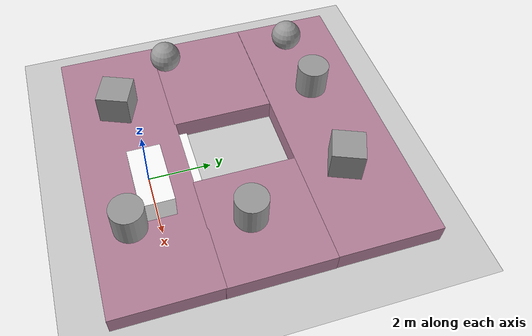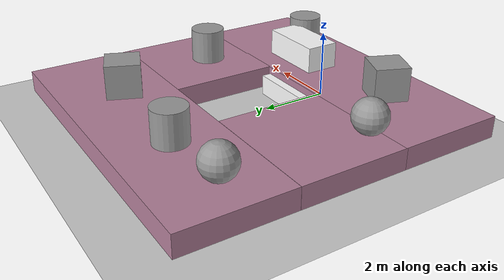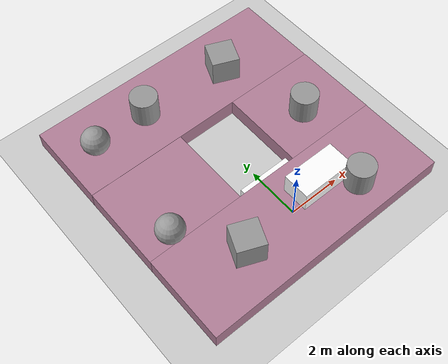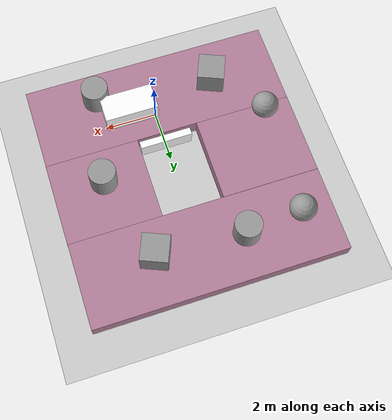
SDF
<sdf version="1.7">
 <world name="default">
  <light name="sun" type="directional">
   <pose>0 0 10 0 -0 0</pose>
   <diffuse>0.8 0.8 0.8 1</diffuse>
   <specular>0.2 0.2 0.2 1</specular>
   <attenuation>
    <range>1000</range>
    <constant>0.9</constant>
    <linear>0.01</linear>
    <quadratic>0.001</quadratic>
   </attenuation>
   <direction>-0.5 0.1 -0.9</direction>
   <spot><inner_angle>0</inner_angle><outer_angle>0</outer_angle><falloff>0</falloff></spot>
  </light>
  <model name="ground_plane">
   <static>1</static>
   <link name="link">
    <collision name="collision">
     <geometry><plane><normal>0 0 1</normal><size>100 100</size></plane></geometry>
     <surface>
      <contact><collide_bitmask>65535</collide_bitmask></contact>
      <friction><ode><mu>100</mu><mu2>50</mu2></ode></friction>
     </surface>
    </collision>
    <visual name="visual">
     <cast_shadows>0</cast_shadows>
     <geometry><plane><normal>0 0 1</normal><size>100 100</size></plane></geometry>
     <material>
      <script><uri>file://media/materials/scripts/gazebo.material</uri><name>Gazebo/Grey</name></script>
     </material>
    </visual>
   </link>
  </model>
  <gravity>0 0 -9.8</gravity>
  <magnetic_field>6e-06 2.3e-05 -4.2e-05</magnetic_field>
  <atmosphere type="adiabatic"/>
  <physics type="ode">
   <max_step_size>0.001</max_step_size>
   <real_time_factor>1</real_time_factor>
   <real_time_update_rate>1000</real_time_update_rate>
  </physics>
  <scene><ambient>0.4 0.4 0.4 1</ambient><background>0.7 0.7 0.7 1</background><shadows>1</shadows></scene>
  <spherical_coordinates>
   <surface_model>EARTH_WGS84</surface_model>
   <latitude_deg>0</latitude_deg>
   <longitude_deg>0</longitude_deg>
   <elevation>0</elevation>
   <heading_deg>0</heading_deg>
  </spherical_coordinates>
  <model name="ground">
   <link name="link">
    <inertial>
     <mass>19.1736</mass>
     <inertia><ixx>16.9447</ixx><ixy>0</ixy><ixz>0</ixz><iyy>145.392</iyy><iyz>0</iyz><izz>161.066</izz></inertia>
    </inertial>
    <visual name="visual">
     <geometry><box><size>9.51826 3.19491 0.630505</size></box></geometry>
     <material>
      <script><name>Gazebo/Grey</name><uri>file://media/materials/scripts/gazebo.material</uri></script>
      <shader type="pixel"><normal_map>__default__</normal_map></shader>
      <ambient>0.7 0.5 0.6 1</ambient>
      <diffuse>0.7 0.7 0.7 1</diffuse>
      <specular>0.01 0.01 0.01 1</specular>
      <emissive>0 0 0 1</emissive>
     </material>
    </visual>
    <collision name="collision">
     <geometry><box><size>9.51826 3.19491 0.630505</size></box></geometry>
     <surface>
      <friction>
       <ode><mu>1</mu><mu2>1</mu2><fdir1>0 0 0</fdir1><slip1>0</slip1><slip2>0</slip2></ode>
       <torsional>
        <coefficient>1</coefficient>
        <patch_radius>0</patch_radius>
        <surface_radius>0</surface_radius>
        <use_patch_radius>1</use_patch_radius>
        <ode><slip>0</slip></ode>
       </torsional>
      </friction>
      <bounce><restitution_coefficient>0</restitution_coefficient><threshold>1e+06</threshold></bounce>
      <contact>
       <collide_without_contact>0</collide_without_contact>
       <collide_without_contact_bitmask>1</collide_without_contact_bitmask>
       <collide_bitmask>1</collide_bitmask>
       <ode>
        <soft_cfm>0</soft_cfm>
        <soft_erp>0.2</soft_erp>
        <kp>1e+13</kp>
        <kd>1</kd>
        <max_vel>0.01</max_vel>
        <min_depth>0</min_depth>
       </ode>
       <bullet>
        <split_impulse>1</split_impulse>
        <split_impulse_penetration_threshold>-0.01</split_impulse_penetration_threshold>
        <soft_cfm>0</soft_cfm>
        <soft_erp>0.2</soft_erp>
        <kp>1e+13</kp>
        <kd>1</kd>
       </bullet>
      </contact>
     </surface>
    </collision>
   </link>
   <static>1</static>
   <pose>-0.16619 -0.374928 0.5 0 -0 0</pose>
  </model>
  <model name="ground_clone">
   <link name="link">
    <inertial>
     <mass>19.1736</mass>
     <inertia><ixx>16.9447</ixx><ixy>0</ixy><ixz>0</ixz><iyy>145.392</iyy><iyz>0</iyz><izz>161.066</izz></inertia>
    </inertial>
    <visual name="visual">
     <geometry><box><size>9.51826 3.19491 0.630505</size></box></geometry>
     <material>
      <script><name>Gazebo/Grey</name><uri>file://media/materials/scripts/gazebo.material</uri></script>
      <shader type="pixel"><normal_map>__default__</normal_map></shader>
      <ambient>0.7 0.5 0.6 1</ambient>
      <diffuse>0.7 0.7 0.7 1</diffuse>
      <specular>0.01 0.01 0.01 1</specular>
      <emissive>0 0 0 1</emissive>
     </material>
    </visual>
    <collision name="collision">
     <geometry><box><size>9.51826 3.19491 0.630505</size></box></geometry>
     <surface>
      <friction>
       <ode><mu>1</mu><mu2>1</mu2><fdir1>0 0 0</fdir1><slip1>0</slip1><slip2>0</slip2></ode>
       <torsional>
        <coefficient>1</coefficient>
        <patch_radius>0</patch_radius>
        <surface_radius>0</surface_radius>
        <use_patch_radius>1</use_patch_radius>
        <ode><slip>0</slip></ode>
       </torsional>
      </friction>
      <bounce><restitution_coefficient>0</restitution_coefficient><threshold>1e+06</threshold></bounce>
      <contact>
       <collide_without_contact>0</collide_without_contact>
       <collide_without_contact_bitmask>1</collide_without_contact_bitmask>
       <collide_bitmask>1</collide_bitmask>
       <ode>
        <soft_cfm>0</soft_cfm>
        <soft_erp>0.2</soft_erp>
        <kp>1e+13</kp>
        <kd>1</kd>
        <max_vel>0.01</max_vel>
        <min_depth>0</min_depth>
       </ode>
       <bullet>
        <split_impulse>1</split_impulse>
        <split_impulse_penetration_threshold>-0.01</split_impulse_penetration_threshold>
        <soft_cfm>0</soft_cfm>
        <soft_erp>0.2</soft_erp>
        <kp>1e+13</kp>
        <kd>1</kd>
       </bullet>
      </contact>
     </surface>
    </collision>
   </link>
   <static>1</static>
   <pose>-0.167152 5.98068 0.5 0 -0 0</pose>
  </model>
  <model name="ground_clone_clone">
   <link name="link">
    <inertial>
     <mass>19.1736</mass>
     <inertia><ixx>16.9447</ixx><ixy>0</ixy><ixz>0</ixz><iyy>145.392</iyy><iyz>0</iyz><izz>161.066</izz></inertia>
    </inertial>
    <visual name="visual">
     <geometry><box><size>3.66439 3.19491 0.630505</size></box></geometry>
     <material>
      <script><name>Gazebo/Grey</name><uri>file://media/materials/scripts/gazebo.material</uri></script>
      <shader type="pixel"><normal_map>__default__</normal_map></shader>
      <ambient>0.7 0.5 0.6 1</ambient>
      <diffuse>0.7 0.7 0.7 1</diffuse>
      <specular>0.01 0.01 0.01 1</specular>
      <emissive>0 0 0 1</emissive>
     </material>
    </visual>
    <collision name="collision">
     <geometry><box><size>3.66439 3.19491 0.630505</size></box></geometry>
     <surface>
      <friction>
       <ode><mu>1</mu><mu2>1</mu2><fdir1>0 0 0</fdir1><slip1>0</slip1><slip2>0</slip2></ode>
       <torsional>
        <coefficient>1</coefficient>
        <patch_radius>0</patch_radius>
        <surface_radius>0</surface_radius>
        <use_patch_radius>1</use_patch_radius>
        <ode><slip>0</slip></ode>
       </torsional>
      </friction>
      <bounce><restitution_coefficient>0</restitution_coefficient><threshold>1e+06</threshold></bounce>
      <contact>
       <collide_without_contact>0</collide_without_contact>
       <collide_without_contact_bitmask>1</collide_without_contact_bitmask>
       <collide_bitmask>1</collide_bitmask>
       <ode>
        <soft_cfm>0</soft_cfm>
        <soft_erp>0.2</soft_erp>
        <kp>1e+13</kp>
        <kd>1</kd>
        <max_vel>0.01</max_vel>
        <min_depth>0</min_depth>
       </ode>
       <bullet>
        <split_impulse>1</split_impulse>
        <split_impulse_penetration_threshold>-0.01</split_impulse_penetration_threshold>
        <soft_cfm>0</soft_cfm>
        <soft_erp>0.2</soft_erp>
        <kp>1e+13</kp>
        <kd>1</kd>
       </bullet>
      </contact>
     </surface>
    </collision>
   </link>
   <static>1</static>
   <pose>-3.09466 2.78124 0.5 0 -0 0</pose>
  </model>
  <model name="ground_clone_clone_clone">
   <link name="link">
    <inertial>
     <mass>19.1736</mass>
     <inertia><ixx>16.9447</ixx><ixy>0</ixy><ixz>0</ixz><iyy>145.392</iyy><iyz>0</iyz><izz>161.066</izz></inertia>
    </inertial>
    <visual name="visual">
     <geometry><box><size>3.53414 3.19491 0.630505</size></box></geometry>
     <material>
      <script><name>Gazebo/Grey</name><uri>file://media/materials/scripts/gazebo.material</uri></script>
      <shader type="pixel"><normal_map>__default__</normal_map></shader>
      <ambient>0.7 0.5 0.6 1</ambient>
      <diffuse>0.7 0.7 0.7 1</diffuse>
      <specular>0.01 0.01 0.01 1</specular>
      <emissive>0 0 0 1</emissive>
     </material>
    </visual>
    <collision name="collision">
     <geometry><box><size>3.53414 3.19491 0.630505</size></box></geometry>
     <surface>
      <friction>
       <ode><mu>1</mu><mu2>1</mu2><fdir1>0 0 0</fdir1><slip1>0</slip1><slip2>0</slip2></ode>
       <torsional>
        <coefficient>1</coefficient>
        <patch_radius>0</patch_radius>
        <surface_radius>0</surface_radius>
        <use_patch_radius>1</use_patch_radius>
        <ode><slip>0</slip></ode>
       </torsional>
      </friction>
      <bounce><restitution_coefficient>0</restitution_coefficient><threshold>1e+06</threshold></bounce>
      <contact>
       <collide_without_contact>0</collide_without_contact>
       <collide_without_contact_bitmask>1</collide_without_contact_bitmask>
       <collide_bitmask>1</collide_bitmask>
       <ode>
        <soft_cfm>0</soft_cfm>
        <soft_erp>0.2</soft_erp>
        <kp>1e+13</kp>
        <kd>1</kd>
        <max_vel>0.01</max_vel>
        <min_depth>0</min_depth>
       </ode>
       <bullet>
        <split_impulse>1</split_impulse>
        <split_impulse_penetration_threshold>-0.01</split_impulse_penetration_threshold>
        <soft_cfm>0</soft_cfm>
        <soft_erp>0.2</soft_erp>
        <kp>1e+13</kp>
        <kd>1</kd>
       </bullet>
      </contact>
     </surface>
    </collision>
   </link>
   <static>1</static>
   <pose>2.83391 2.78633 0.5 0 -0 0</pose>
  </model>
  <model name="unit_box_clone">
   <pose>-2.38015 -0.395232 1.31525 1.5708 -5e-06 -0.395228</pose>
   <link name="link">
    <inertial>
     <mass>1</mass>
     <inertia>
      <ixx>0.166667</ixx>
      <ixy>0</ixy>
      <ixz>0</ixz>
      <iyy>0.166667</iyy>
      <iyz>0</iyz>
      <izz>0.166667</izz>
     </inertia>
    </inertial>
    <collision name="collision"><geometry><box><size>1 1 1</size></box></geometry></collision>
    <visual name="visual">
     <geometry><box><size>1 1 1</size></box></geometry>
     <material>
      <script><name>Gazebo/Grey</name><uri>file://media/materials/scripts/gazebo.material</uri></script>
     </material>
    </visual>
   </link>
  </model>
  <model name="unit_cylinder">
   <pose>2.70757 2.47044 1.31525 0 -0 3.8e-05</pose>
   <link name="link">
    <inertial>
     <mass>1</mass>
     <inertia><ixx>0.145833</ixx><ixy>0</ixy><ixz>0</ixz><iyy>0.145833</iyy><iyz>0</iyz><izz>0.125</izz></inertia>
    </inertial>
    <collision name="collision">
     <geometry><cylinder><radius>0.5</radius><length>1</length></cylinder></geometry>
    </collision>
    <visual name="visual">
     <geometry><cylinder><radius>0.5</radius><length>1</length></cylinder></geometry>
     <material>
      <script><name>Gazebo/Grey</name><uri>file://media/materials/scripts/gazebo.material</uri></script>
     </material>
    </visual>
   </link>
  </model>
  <model name="unit_sphere">
   <pose>-3.73656 5.78878 1.31525 0 -0 0</pose>
   <link name="link">
    <inertial>
     <mass>1</mass>
     <inertia><ixx>0.1</ixx><ixy>0</ixy><ixz>0</ixz><iyy>0.1</iyy><iyz>0</iyz><izz>0.1</izz></inertia>
    </inertial>
    <collision name="collision"><geometry><sphere><radius>0.5</radius></sphere></geometry></collision>
    <visual name="visual">
     <geometry><sphere><radius>0.5</radius></sphere></geometry>
     <material>
      <script><name>Gazebo/Grey</name><uri>file://media/materials/scripts/gazebo.material</uri></script>
     </material>
    </visual>
   </link>
  </model>
  <model name="unit_cylinder_clone">
   <pose>2.07082 -0.866699 1.31525 -2e-06 -6e-06 -4.9e-05</pose>
   <link name="link">
    <inertial>
     <mass>1</mass>
     <inertia><ixx>0.145833</ixx><ixy>0</ixy><ixz>0</ixz><iyy>0.145833</iyy><iyz>0</iyz><izz>0.125</izz></inertia>
    </inertial>
    <collision name="collision">
     <geometry><cylinder><radius>0.5</radius><length>1</length></cylinder></geometry>
    </collision>
    <visual name="visual">
     <geometry><cylinder><radius>0.5</radius><length>1</length></cylinder></geometry>
     <material>
      <script><name>Gazebo/Grey</name><uri>file://media/materials/scripts/gazebo.material</uri></script>
     </material>
    </visual>
   </link>
  </model>
  <model name="unit_cylinder_clone_0">
   <pose>-1.591 5.92632 1.31525 0 -0 0.000136</pose>
   <link name="link">
    <inertial>
     <mass>1</mass>
     <inertia><ixx>0.145833</ixx><ixy>0</ixy><ixz>0</ixz><iyy>0.145833</iyy><iyz>0</iyz><izz>0.125</izz></inertia>
    </inertial>
    <collision name="collision">
     <geometry><cylinder><radius>0.5</radius><length>1</length></cylinder></geometry>
    </collision>
    <visual name="visual">
     <geometry><cylinder><radius>0.5</radius><length>1</length></cylinder></geometry>
     <material>
      <script><name>Gazebo/Grey</name><uri>file://media/materials/scripts/gazebo.material</uri></script>
     </material>
    </visual>
   </link>
  </model>
  <model name="unit_box_clone_clone">
   <pose>1.73944 5.73916 1.31525 1.5708 -0 -0.395235</pose>
   <link name="link">
    <inertial>
     <mass>1</mass>
     <inertia>
      <ixx>0.166667</ixx>
      <ixy>0</ixy>
      <ixz>0</ixz>
      <iyy>0.166667</iyy>
      <iyz>0</iyz>
      <izz>0.166667</izz>
     </inertia>
    </inertial>
    <collision name="collision"><geometry><box><size>1 1 1</size></box></geometry></collision>
    <visual name="visual">
     <geometry><box><size>1 1 1</size></box></geometry>
     <material>
      <script><name>Gazebo/Grey</name><uri>file://media/materials/scripts/gazebo.material</uri></script>
     </material>
    </visual>
   </link>
  </model>
  <model name="unit_sphere_clone">
   <pose>-3.875 1.51217 1.31525 0 -0 0</pose>
   <link name="link">
    <inertial>
     <mass>1</mass>
     <inertia><ixx>0.1</ixx><ixy>0</ixy><ixz>0</ixz><iyy>0.1</iyy><iyz>0</iyz><izz>0.1</izz></inertia>
    </inertial>
    <collision name="collision"><geometry><sphere><radius>0.5</radius></sphere></geometry></collision>
    <visual name="visual">
     <geometry><sphere><radius>0.5</radius></sphere></geometry>
     <material>
      <script><name>Gazebo/Grey</name><uri>file://media/materials/scripts/gazebo.material</uri></script>
     </material>
    </visual>
   </link>
  </model>
  <model name="Apriltag1">
   <link name="main">
    <inertial>
     <mass>1</mass>
     <inertia><ixx>1</ixx><ixy>0</ixy><ixz>0</ixz><iyy>1</iyy><iyz>0</iyz><izz>1</izz></inertia>
    </inertial>
    <visual name="main_Visual">
     <geometry><box><size>1 1 2</size></box></geometry>
     <material>
      <script>
       <uri>model://Apriltag36_11_00001/materials/scripts</uri>
       <uri>model://Apriltag36_11_00001/materials/textures</uri>
       <name>Apriltag36_11_00001</name>
      </script>
      <shader type="pixel"><normal_map>__default__</normal_map></shader>
      <ambient>1 1 1 1</ambient>
      <diffuse>1 1 1 1</diffuse>
      <specular>0 0 0 1</specular>
      <emissive>0 0 0 1</emissive>
     </material>
    </visual>
   </link>
   <static>1</static>
   <pose>0 1 0.1 -1e-06 -1.57079 0</pose>
  </model>
  <model name="Apriltag2">
   <link name="main">
    <pose>1 0 0 0 -0 0</pose>
    <inertial>
     <mass>1</mass>
     <inertia><ixx>1</ixx><ixy>0</ixy><ixz>0</ixz><iyy>1</iyy><iyz>0</iyz><izz>1</izz></inertia>
    </inertial>
    <visual name="main_Visual">
     <geometry><box><size>1 1 2</size></box></geometry>
     <material>
      <script>
       <uri>model://Apriltag36_11_00005/materials/scripts</uri>
       <uri>model://Apriltag36_11_00005/materials/textures</uri>
       <name>Apriltag36_11_00005</name>
      </script>
      <shader type="pixel"><normal_map>__default__</normal_map></shader>
      <ambient>1 1 1 1</ambient>
      <diffuse>1 1 1 1</diffuse>
      <specular>0 0 0 1</specular>
      <emissive>0 0 0 1</emissive>
     </material>
    </visual>
   </link>
   <static>1</static>
   <pose>1 0 0.1 -1e-06 -1.57079 0</pose>
  </model>
 </world>
</sdf>
